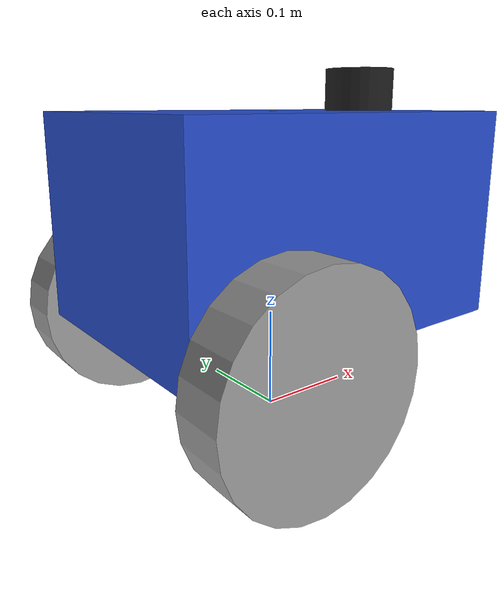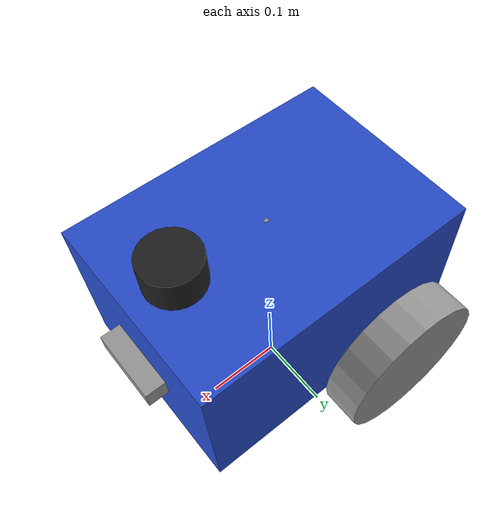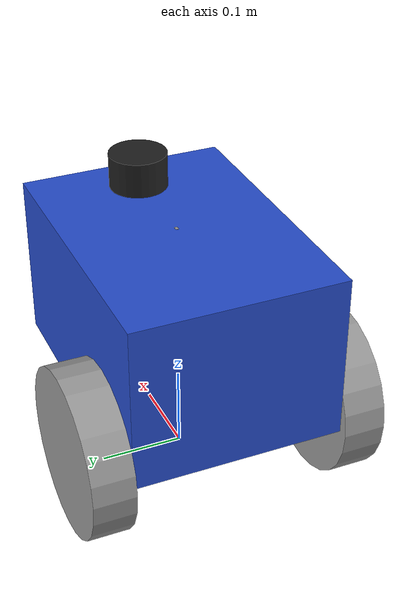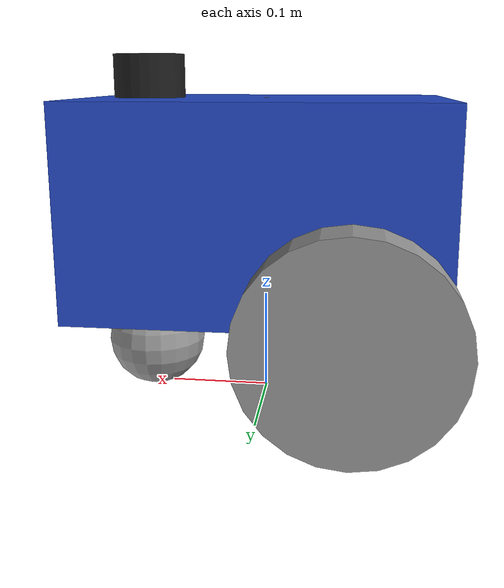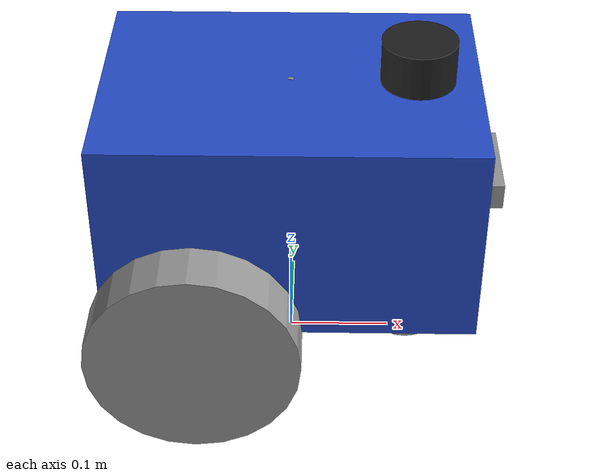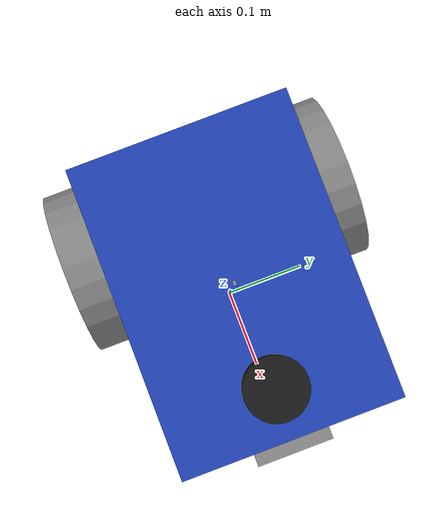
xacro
<?xml version="1.0"?>
<robot name="my_robot" xmlns:xacro="http://www.ros.org/wiki/xacro">

    <xacro:include filename="common_properties.xacro" />
    <xacro:include filename="mobile_base.xacro" />
    <xacro:include filename="nav_mobile_base_gazebo.xacro" />

    <xacro:include filename="imu.xacro" />
    <xacro:include filename="nav_lidar.xacro" />
    <xacro:include filename="camera_rgbd.xacro" />

</robot>

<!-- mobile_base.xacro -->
<robot xmlns:xacro="http://www.ros.org/wiki/xacro">

    <xacro:property name="base_length" value="0.35" />
    <xacro:property name="base_width" value="0.25" />
    <xacro:property name="base_height" value="0.2" />
    <xacro:property name="wheel_radius" value="0.1" />
    <xacro:property name="wheel_length" value="0.05" />

    <link name="base_footprint" />

    <link name="base_link">
        <visual>
            <geometry>
                <box size="${base_length} ${base_width} ${base_height}" />
            </geometry>
            <origin xyz="0 0 ${base_height / 2.0}" rpy="0 0 0" />
            <material name="blue" />
        </visual>
        <collision>
            <geometry>
                <box size="${base_length} ${base_width} ${base_height}" />
            </geometry>
            <origin xyz="0 0 ${base_height / 2.0}" rpy="0 0 0" />
        </collision>
        <xacro:box_inertia m="5.0" l="${2*base_length}" w="${2*base_width}" h="${2*base_height}"
                           xyz="0 0 ${base_height / 2.0}" rpy="0 0 0" />
    </link>

    <xacro:macro name="wheel_link" params="prefix">
        <link name="${prefix}_wheel_link">
            <visual>
                <geometry>
                    <cylinder radius="${wheel_radius}" length="${wheel_length}" />
                </geometry>
                <origin xyz="0 0 0" rpy="${pi / 2.0} 0 0" />
                <material name="grey" />
            </visual>
            <collision>
                <geometry>
                    <cylinder radius="${wheel_radius}" length="${wheel_length}" />
                </geometry>
                <origin xyz="0 0 0" rpy="${pi / 2.0} 0 0" />
            </collision>
            <xacro:cylinder_inertia m="1.0" r="${2*wheel_radius}" h="${2*wheel_length}"
                                    xyz="0 0 0" rpy="${pi / 2.0} 0 0" />
        </link>
    </xacro:macro>

    <xacro:wheel_link prefix="right" />
    <xacro:wheel_link prefix="left" />

    <link name="caster_wheel_link">
        <visual>
            <geometry>
                <sphere radius="${wheel_radius / 2.0}" />
            </geometry>
            <origin xyz="0 0 0" rpy="0 0 0" />
            <material name="grey" />
        </visual>
        <collision>
            <geometry>
                <sphere radius="${wheel_radius / 2.0}" />
            </geometry>
            <origin xyz="0 0 0" rpy="0 0 0" />
        </collision>
        <xacro:sphere_inertia m="0.5" r="${2*wheel_radius / 2.0}"
                              xyz="0 0 0" rpy="0 0 0" />
    </link>

    <joint name="base_joint" type="fixed">
        <parent link="base_footprint" />
        <child link="base_link" />
        <origin xyz="0 0 ${wheel_radius}" rpy="0 0 0"/>
    </joint>

    <joint name="base_right_wheel_joint" type="continuous">
        <parent link="base_link" />
        <child link="right_wheel_link" />
        <origin xyz="${-base_length / 4.0} ${-(base_width + wheel_length) / 2.0} 0" rpy="0 0 0" />
        <axis xyz="0 1 0" />
    </joint>

    <joint name="base_left_wheel_joint" type="continuous">
        <parent link="base_link" />
        <child link="left_wheel_link" />
        <origin xyz="${-base_length / 4.0} ${(base_width + wheel_length) / 2.0} 0" rpy="0 0 0" />
        <axis xyz="0 1 0" />
    </joint>

    <joint name="base_caster_wheel_joint" type="fixed">
        <parent link="base_link" />
        <child link="caster_wheel_link" />
        <origin xyz="${base_length / 3.0} 0 ${-wheel_radius / 2.0}" rpy="0 0 0" />
    </joint>

</robot>

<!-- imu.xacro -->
<robot xmlns:xacro="http://www.ros.org/wiki/xacro">

    <xacro:property name="imu_length" value="0.0052" />
    <xacro:property name="imu_width" value="0.0038" />
    <xacro:property name="imu_height" value="0.001" />

    <link name="imu_link">
        <visual>
            <geometry>
                <box size="${imu_length} ${imu_width} ${imu_height}" />
            </geometry>
            <material name="grey" />
        </visual>
        <collision>
            <geometry>
                <box size="${imu_length} ${imu_width} ${imu_height}" />
            </geometry>
        </collision>
        <xacro:box_inertia m="0.00015" l="${imu_length}" w="${imu_width}" h="${imu_height}"
                           xyz="0 0 0" rpy="0 0 0" />
    </link>

    <joint name="imu_joint" type="fixed">
        <parent link="base_link"/>
        <child link="imu_link" />
        <origin xyz="0 0 ${base_height}" rpy="0 0 0" />
    </joint>

    <gazebo reference="imu_link">
        <gravity>true</gravity>
        <sensor name="imu_sensor" type="imu">
            <!-- ensure the sensor is active (required) -->
            <always_on>true</always_on>
            <update_rate>100</update_rate>
            <visualize>true</visualize>
            <imu>
                <orientation>
                <x>
                    <noise type="gaussian">
                    <mean>0.0</mean>
                    <stddev>2e-3</stddev>
                    </noise>
                </x>
                <y>
                    <noise type="gaussian">
                    <mean>0.0</mean>
                    <stddev>2e-3</stddev>
                    </noise>
                </y>
                <z>
                    <noise type="gaussian">
                    <mean>0.0</mean>
                    <stddev>2e-3</stddev>
                    </noise>
                </z>
                </orientation>
                <angular_velocity>
                <x>
                    <noise type="gaussian">
                    <mean>0.0</mean>
                    <stddev>2e-4</stddev>
                    </noise>
                </x>
                <y>
                    <noise type="gaussian">
                    <mean>0.0</mean>
                    <stddev>2e-4</stddev>
                    </noise>
                </y>
                <z>
                    <noise type="gaussian">
                    <mean>0.0</mean>
                    <stddev>2e-4</stddev>
                    </noise>
                </z>
                </angular_velocity>
                <linear_acceleration>
                <x>
                    <noise type="gaussian">
                    <mean>0.0</mean>
                    <stddev>1.7e-2</stddev>
                    </noise>
                </x>
                <y>
                    <noise type="gaussian">
                    <mean>0.0</mean>
                    <stddev>1.7e-2</stddev>
                    </noise>
                </y>
                <z>
                    <noise type="gaussian">
                    <mean>0.0</mean>
                    <stddev>1.7e-2</stddev>
                    </noise>
                </z>
                </linear_acceleration>
            </imu>
            <plugin name="imu_controller" filename="libgazebo_ros_imu_sensor.so">
                <ros>
                <!-- publish to /imu/data -->
                <namespace>/imu</namespace>
                <remapping>~/out:=data</remapping>
                </ros>
            </plugin>
        </sensor>
    </gazebo>
</robot>

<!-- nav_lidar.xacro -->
<robot xmlns:xacro="http://www.ros.org/wiki/xacro">

    <xacro:property name="lidar_radius" value="0.035" />
    <xacro:property name="lidar_height" value="0.042" />
    <xacro:property name="two_d_lidar_sample_size" value="120"/>
    <xacro:property name="two_d_lidar_min_angle" value="-3.14159"/>
    <xacro:property name="two_d_lidar_max_angle" value="3.14159"/>
    <xacro:property name="two_d_lidar_min_range" value="0.16"/>
    <xacro:property name="two_d_lidar_max_range" value="8"/>

    <link name="lidar_link">
        <visual>
            <geometry>
                <cylinder radius="${lidar_radius}" length="${lidar_height}" />
            </geometry>
            <material name="black" />
        </visual>
        <collision>
            <geometry>
                <cylinder radius="${lidar_radius}" length="${lidar_height}" />
            </geometry>
        </collision>
        <xacro:cylinder_inertia m="0.131" r="${lidar_radius}" h="${lidar_height}"
                           xyz="0 0 0" rpy="0 0 0" />
    </link>

    <joint name="lidar_joint" type="fixed">
        <parent link="base_link"/>
        <child link="lidar_link" />
        <origin xyz="${base_length / 3.0} 0 ${base_height + lidar_height / 2.0}" rpy="0 0 0" />
    </joint>

    <gazebo reference="lidar_link">
        <gravity>true</gravity>
        <sensor name="lidar_sensor" type="ray">
            <!-- ensure the sensor is active (required) -->
            <always_on>true</always_on>
            <update_rate>5</update_rate>
            <visualize>true</visualize>
            <enable_metrics>true</enable_metrics>
            <ray>
                <scan>
                    <horizontal>
                        <samples>${two_d_lidar_sample_size}</samples>
                        <resolution>1</resolution>
                        <min_angle>${radians(two_d_lidar_min_angle)}</min_angle>
                        <max_angle>${radians(two_d_lidar_max_angle)}</max_angle>
                        <min_intensity>100.0</min_intensity>
                    </horizontal>
                </scan>
                <range>
                    <min>${two_d_lidar_min_range}</min>
                    <max>${two_d_lidar_max_range}</max>
                    <resolution>0.015</resolution>
                </range>
                <noise>
                    <type>gaussian</type>
                    <mean>0.0</mean>
                    <stddev>0.0</stddev>
                </noise>
            </ray>
            <plugin name="gazebo_ros_laser" filename="libgazebo_ros_ray_sensor.so">
                <ros>
                    <namespace>/ray</namespace>
                    <remapping>~/out:=laserscan</remapping>
                </ros>
                <output_type>sensor_msgs/LaserScan</output_type>
            </plugin>
        </sensor>
    </gazebo>
</robot>

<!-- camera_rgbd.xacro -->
<robot xmlns:xacro="http://www.ros.org/wiki/xacro">

    <xacro:property name="camera_length" value="0.025" />
    <xacro:property name="camera_width" value="0.09" />
    <xacro:property name="camera_height" value="0.025" />

    <link name="camera_link">
        <visual>
            <geometry>
                <box size="${camera_length} ${camera_width} ${camera_height}" />
            </geometry>
            <material name="grey" />
        </visual>
        <collision>
            <geometry>
                <box size="${camera_length} ${camera_width} ${camera_height}" />
            </geometry>
        </collision>
        <xacro:box_inertia m="0.072" l="${camera_length}" w="${camera_width}" h="${camera_height}"
                           xyz="0 0 0" rpy="0 0 0" />
    </link>

    <joint name="base_camera_joint" type="fixed">
        <parent link="base_link" />
        <child link="camera_link" />
        <origin xyz="${(base_length + camera_length) / 2.0} 0 ${base_height / 2.0}" rpy="0 0 0" />
    </joint>

    <link name="camera_link_optical">
    </link>

    <joint name="camera_optical_joint" type="fixed">
        <!-- these values have to be these values otherwise the gazebo camera
            image won't be aligned properly with the frame it is supposedly
            originating from -->
        <origin xyz="0 0 0" rpy="${-pi/2} 0 ${-pi/2}"/>
        <parent link="camera_link"/>
        <child link="camera_link_optical"/>
    </joint>

    <gazebo reference="camera_link">
        <material>Gazebo/Red</material>
        <sensor name="camera_sensor" type="depth">
            <pose>0 0 0 0 0 0</pose>
            <visualize>true</visualize>
            <update_rate>90</update_rate>
            <camera>
                <horizontal_fov>1.50098</horizontal_fov>
                <image>
                    <width>1280</width>
                    <height>720</height>
                </image>
            </camera>
            <plugin name="camera_controller" filename="libgazebo_ros_camera.so">
                <frame_name>camera_link_optical</frame_name>
                <min_depth>0.2</min_depth>
                <max_depth>10</max_depth>
            </plugin>
        </sensor>
    </gazebo>

</robot>
